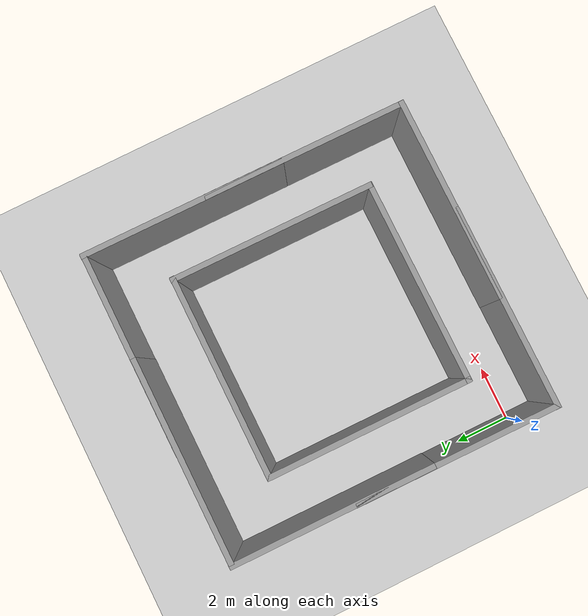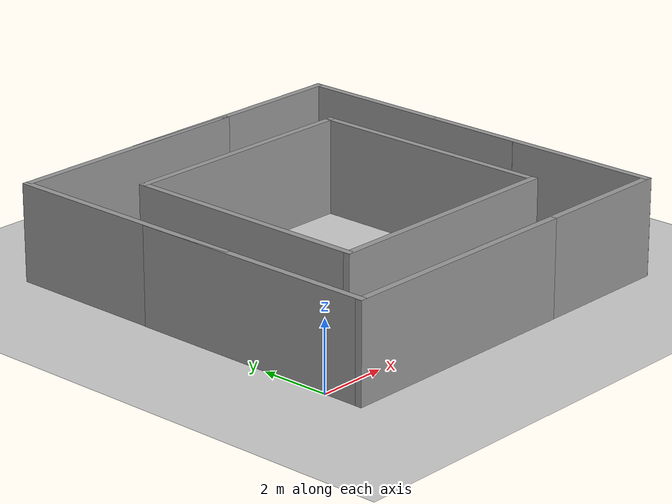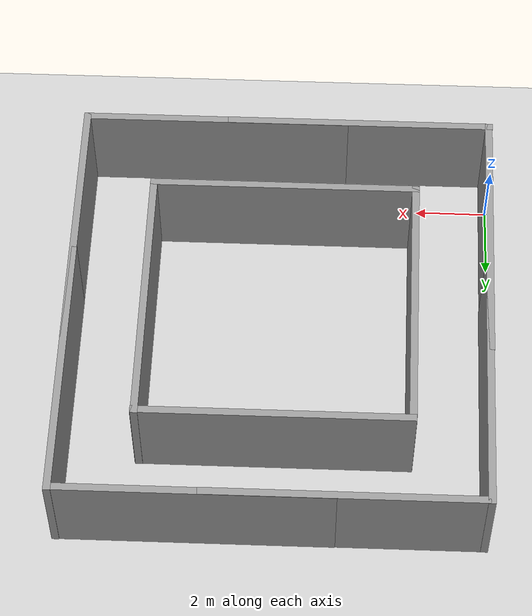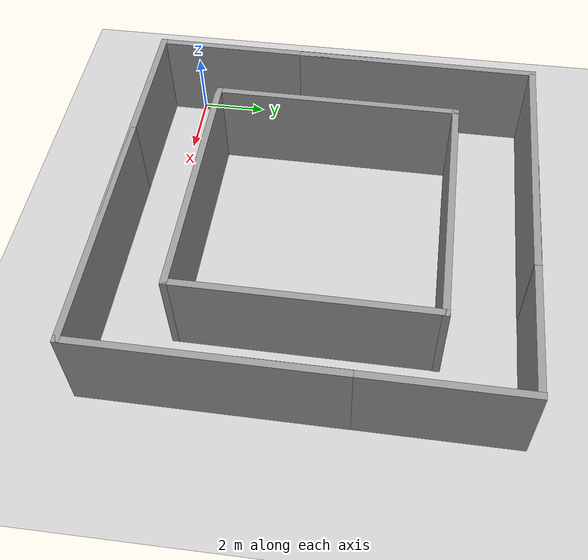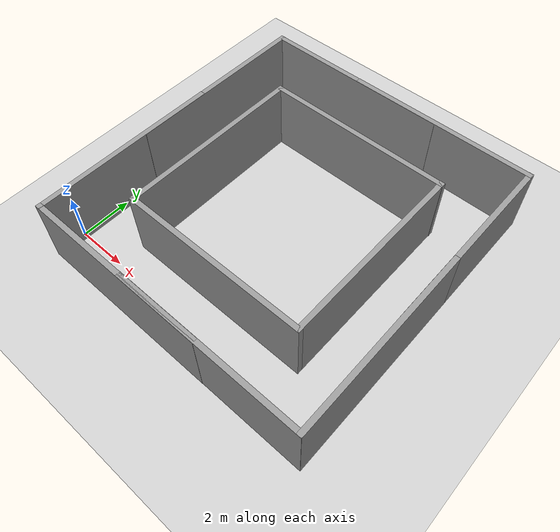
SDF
<sdf version="1.6">
 <world name="default">
  <light name="sun" type="directional">
   <pose>0 0 10 0 -0 0</pose>
   <diffuse>0.8 0.8 0.8 1</diffuse>
   <specular>0.1 0.1 0.1 1</specular>
   <attenuation>
    <range>1000</range>
    <constant>0.9</constant>
    <linear>0.01</linear>
    <quadratic>0.001</quadratic>
   </attenuation>
   <direction>-0.5 0.5 -1</direction>
  </light>
  <model name="ground_plane">
   <static>1</static>
   <link name="link">
    <collision name="collision">
     <geometry><plane><normal>0 0 1</normal><size>100 100</size></plane></geometry>
     <surface><friction><ode><mu>100</mu><mu2>50</mu2></ode></friction></surface>
    </collision>
    <visual name="visual">
     <cast_shadows>0</cast_shadows>
     <geometry><plane><normal>0 0 1</normal><size>100 100</size></plane></geometry>
     <material>
      <script><uri>file://media/materials/scripts/gazebo.material</uri><name>Gazebo/Grey</name></script>
     </material>
    </visual>
   </link>
  </model>
  <gravity>0 0 -9.8</gravity>
  <magnetic_field>6e-06 2.3e-05 -4.2e-05</magnetic_field>
  <atmosphere type="adiabatic"/>
  <physics name="default_physics" default="0" type="ode">
   <max_step_size>0.001</max_step_size>
   <real_time_factor>1</real_time_factor>
   <real_time_update_rate>1000</real_time_update_rate>
  </physics>
  <scene><ambient>0.4 0.4 0.4 1</ambient><background>0.7 0.7 0.7 1</background><shadows>1</shadows></scene>
  <spherical_coordinates>
   <surface_model>EARTH_WGS84</surface_model>
   <latitude_deg>0</latitude_deg>
   <longitude_deg>0</longitude_deg>
   <elevation>0</elevation>
   <heading_deg>0</heading_deg>
  </spherical_coordinates>
  <model name="grey_wall_0">
   <static>1</static>
   <link name="link">
    <pose>0 0 1.4 0 -0 0</pose>
    <collision name="collision"><geometry><box><size>7.5 0.2 2.8</size></box></geometry></collision>
    <visual name="visual">
     <cast_shadows>0</cast_shadows>
     <geometry><box><size>7.5 0.2 2.8</size></box></geometry>
     <material>
      <script>
       <uri>model://grey_wall/materials/scripts</uri>
       <uri>model://grey_wall/materials/textures</uri>
       <name>vrc/grey_wall</name>
      </script>
     </material>
    </visual>
   </link>
   <pose>5.79328 1.14134 0 0 -0 0</pose>
  </model>
  <model name="grey_wall_1">
   <static>1</static>
   <link name="link">
    <pose>0 0 1.4 0 -0 0</pose>
    <collision name="collision"><geometry><box><size>7.5 0.2 2.8</size></box></geometry></collision>
    <visual name="visual">
     <cast_shadows>0</cast_shadows>
     <geometry><box><size>7.5 0.2 2.8</size></box></geometry>
     <material>
      <script>
       <uri>model://grey_wall/materials/scripts</uri>
       <uri>model://grey_wall/materials/textures</uri>
       <name>vrc/grey_wall</name>
      </script>
     </material>
    </visual>
   </link>
   <pose>3.73373 -1.09769 0 0 -0 0</pose>
  </model>
  <model name="grey_wall_2">
   <static>1</static>
   <link name="link">
    <pose>0 0 1.4 0 -0 0</pose>
    <collision name="collision"><geometry><box><size>7.5 0.2 2.8</size></box></geometry></collision>
    <visual name="visual">
     <cast_shadows>0</cast_shadows>
     <geometry><box><size>7.5 0.2 2.8</size></box></geometry>
     <material>
      <script>
       <uri>model://grey_wall/materials/scripts</uri>
       <uri>model://grey_wall/materials/textures</uri>
       <name>vrc/grey_wall</name>
      </script>
     </material>
    </visual>
   </link>
   <pose>7.81961 -1.09176 0 0 -0 0</pose>
  </model>
  <model name="grey_wall_3">
   <static>1</static>
   <link name="link">
    <pose>0 0 1.4 0 -0 0</pose>
    <collision name="collision"><geometry><box><size>7.5 0.2 2.8</size></box></geometry></collision>
    <visual name="visual">
     <cast_shadows>0</cast_shadows>
     <geometry><box><size>7.5 0.2 2.8</size></box></geometry>
     <material>
      <script>
       <uri>model://grey_wall/materials/scripts</uri>
       <uri>model://grey_wall/materials/textures</uri>
       <name>vrc/grey_wall</name>
      </script>
     </material>
    </visual>
   </link>
   <pose>11.5014 2.56113 0 0 -0 1.56438</pose>
  </model>
  <model name="grey_wall_4">
   <static>1</static>
   <link name="link">
    <pose>0 0 1.4 0 -0 0</pose>
    <collision name="collision"><geometry><box><size>7.5 0.2 2.8</size></box></geometry></collision>
    <visual name="visual">
     <cast_shadows>0</cast_shadows>
     <geometry><box><size>7.5 0.2 2.8</size></box></geometry>
     <material>
      <script>
       <uri>model://grey_wall/materials/scripts</uri>
       <uri>model://grey_wall/materials/textures</uri>
       <name>vrc/grey_wall</name>
      </script>
     </material>
    </visual>
   </link>
   <pose>9.46591 4.81441 0 0 -0 1.56438</pose>
  </model>
  <model name="grey_wall_5">
   <static>1</static>
   <link name="link">
    <pose>0 0 1.4 0 -0 0</pose>
    <collision name="collision"><geometry><box><size>7.5 0.2 2.8</size></box></geometry></collision>
    <visual name="visual">
     <cast_shadows>0</cast_shadows>
     <geometry><box><size>7.5 0.2 2.8</size></box></geometry>
     <material>
      <script>
       <uri>model://grey_wall/materials/scripts</uri>
       <uri>model://grey_wall/materials/textures</uri>
       <name>vrc/grey_wall</name>
      </script>
     </material>
    </visual>
   </link>
   <pose>11.5272 7.15862 0 0 -0 1.56438</pose>
  </model>
  <model name="grey_wall_6">
   <static>1</static>
   <link name="link">
    <pose>0 0 1.4 0 -0 0</pose>
    <collision name="collision"><geometry><box><size>7.5 0.2 2.8</size></box></geometry></collision>
    <visual name="visual">
     <cast_shadows>0</cast_shadows>
     <geometry><box><size>7.5 0.2 2.8</size></box></geometry>
     <material>
      <script>
       <uri>model://grey_wall/materials/scripts</uri>
       <uri>model://grey_wall/materials/textures</uri>
       <name>vrc/grey_wall</name>
      </script>
     </material>
    </visual>
   </link>
   <pose>5.85041 8.45461 0 0 -0 0</pose>
  </model>
  <model name="grey_wall_7">
   <static>1</static>
   <link name="link">
    <pose>0 0 1.4 0 -0 0</pose>
    <collision name="collision"><geometry><box><size>7.5 0.2 2.8</size></box></geometry></collision>
    <visual name="visual">
     <cast_shadows>0</cast_shadows>
     <geometry><box><size>7.5 0.2 2.8</size></box></geometry>
     <material>
      <script>
       <uri>model://grey_wall/materials/scripts</uri>
       <uri>model://grey_wall/materials/textures</uri>
       <name>vrc/grey_wall</name>
      </script>
     </material>
    </visual>
   </link>
   <pose>7.87969 10.7982 0 0 -0 0</pose>
  </model>
  <model name="grey_wall_8">
   <static>1</static>
   <link name="link">
    <pose>0 0 1.4 0 -0 0</pose>
    <collision name="collision"><geometry><box><size>7.5 0.2 2.8</size></box></geometry></collision>
    <visual name="visual">
     <cast_shadows>0</cast_shadows>
     <geometry><box><size>7.5 0.2 2.8</size></box></geometry>
     <material>
      <script>
       <uri>model://grey_wall/materials/scripts</uri>
       <uri>model://grey_wall/materials/textures</uri>
       <name>vrc/grey_wall</name>
      </script>
     </material>
    </visual>
   </link>
   <pose>3.95932 10.7898 0 0 -0 0</pose>
  </model>
  <model name="grey_wall_4_clone">
   <static>1</static>
   <link name="link">
    <pose>0 0 1.4 0 -0 0</pose>
    <collision name="collision"><geometry><box><size>7.5 0.2 2.8</size></box></geometry></collision>
    <visual name="visual">
     <cast_shadows>0</cast_shadows>
     <geometry><box><size>7.5 0.2 2.8</size></box></geometry>
     <material>
      <script>
       <uri>model://grey_wall/materials/scripts</uri>
       <uri>model://grey_wall/materials/textures</uri>
       <name>vrc/grey_wall</name>
      </script>
     </material>
    </visual>
   </link>
   <pose>2.16949 4.80292 0 0 -0 1.56438</pose>
  </model>
  <model name="grey_wall_4_clone_0">
   <static>1</static>
   <link name="link">
    <pose>0 0 1.4 0 -0 0</pose>
    <collision name="collision"><geometry><box><size>7.5 0.2 2.8</size></box></geometry></collision>
    <visual name="visual">
     <cast_shadows>0</cast_shadows>
     <geometry><box><size>7.5 0.2 2.8</size></box></geometry>
     <material>
      <script>
       <uri>model://grey_wall/materials/scripts</uri>
       <uri>model://grey_wall/materials/textures</uri>
       <name>vrc/grey_wall</name>
      </script>
     </material>
    </visual>
   </link>
   <pose>0.113379 2.55456 0 0 -0 1.56438</pose>
  </model>
  <model name="grey_wall_4_clone_1">
   <static>1</static>
   <link name="link">
    <pose>0 0 1.4 0 -0 0</pose>
    <collision name="collision"><geometry><box><size>7.5 0.2 2.8</size></box></geometry></collision>
    <visual name="visual">
     <cast_shadows>0</cast_shadows>
     <geometry><box><size>7.5 0.2 2.8</size></box></geometry>
     <material>
      <script>
       <uri>model://grey_wall/materials/scripts</uri>
       <uri>model://grey_wall/materials/textures</uri>
       <name>vrc/grey_wall</name>
      </script>
     </material>
    </visual>
   </link>
   <pose>0.154671 7.14621 0 0 -0 1.56438</pose>
  </model>
 </world>
</sdf>
